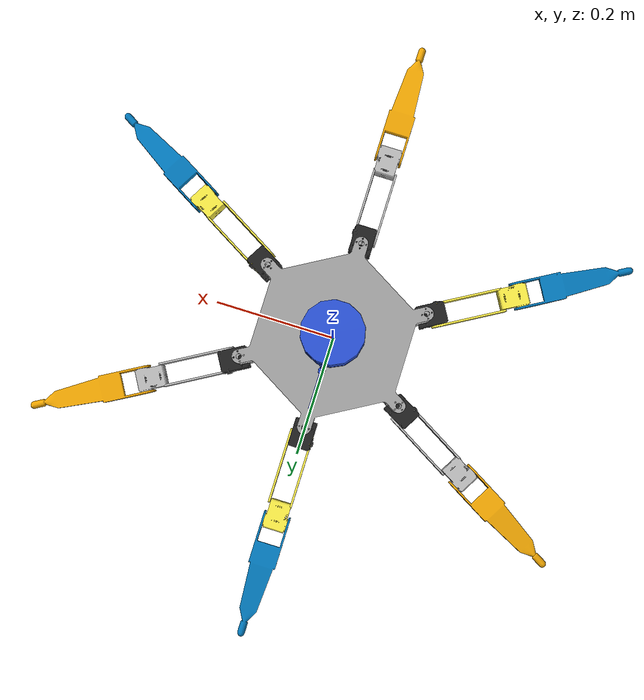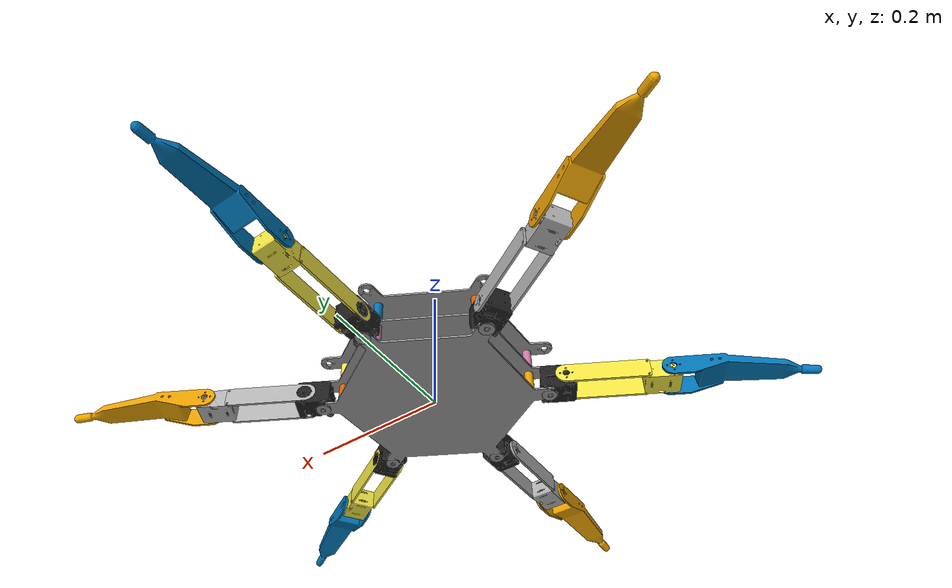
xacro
<?xml version="1.0"?>
<!-- Copyright (c) 2020 -->
<!-- Commonwealth Scientific and Industrial Research Organisation (CSIRO) -->
<!-- ABN 41 687 119 230 -->

<robot name="hexapod_model"
	xmlns:xacro="http://www.ros.org/wiki/xacro">

	<gazebo>
		<plugin name="gazebo_ros_control" filename="libgazebo_ros_control.so">
		</plugin>

		<plugin name="imu_plugin" filename="libgazebo_ros_imu.so">
			<alwaysOn>true</alwaysOn>
			<bodyName>bottom_plate</bodyName>
			<topicName>imu/data</topicName>
			<serviceName>imu_service</serviceName>
			<gaussianNoise>0.0</gaussianNoise>
			<updateRate>20.0</updateRate>
		</plugin>

	</gazebo>

	<gazebo reference="bottom_plate">
		<material>Gazebo/Grey</material>
		<selfCollide>True</selfCollide>
		<gravity>True</gravity>
	</gazebo>

	<gazebo reference="mid_plate">
		<material>Gazebo/Grey</material>
		<selfCollide>True</selfCollide>
		<gravity>True</gravity>
	</gazebo>

	<gazebo reference="top_plate">
		<material>Gazebo/Grey</material>
		<selfCollide>True</selfCollide>
		<gravity>True</gravity>
	</gazebo>

	<gazebo reference="puck">
		<material>Gazebo/BlueGlow</material>
		<selfCollide>True</selfCollide>
		<gravity>True</gravity>
	</gazebo>

	<xacro:include filename="$(find cavex_hexapod)/robot/macros.xacro" />

	<!-- model dimentions and parameters -->

	<xacro:property name="bodyPlateHeight" value="0.003" />
	<xacro:property name="bodyPlateRadius" value="0.152" />
	<xacro:property name="bodyPlateHexAngle" value="1.04719755" />
	<xacro:property name="bodyPlateOffset0" value="0.038" />
	<xacro:property name="bodyPlateOffset1" value="0.045" />
	<xacro:property name="bodyPlateMass" value="0.3" />

	<!-- base_motor link -->

	<xacro:property name="basemHeight" value="0.039" />
	<xacro:property name="basemRadius" value="0.01" />
	<xacro:property name="basemMass" value="0.05" />

	<xacro:property name="basem_yaw" value="0" />
	<xacro:property name="basem_pitch" value="0" />
	<xacro:property name="basem_roll" value="0" />

	<!-- coxa link -->

	<xacro:property name="coxaWidth" value="0.03611" />
	<xacro:property name="coxaLength" value="0.04645" />
	<xacro:property name="coxaHeight" value="0.036" />
	<xacro:property name="coxaMass" value="0.0982" />
	<xacro:property name="top2axelA" value="0.0103" />
	<xacro:property name="axelA2axelB" value="0.0235" />

	<xacro:property name="twoxl_yaw" value="1.5708" />

	<xacro:property name="coxa_yaw" value="0" />
	<xacro:property name="coxa_pitch" value="0" />
	<xacro:property name="coxa_roll" value="0" />

	<xacro:property name="coxaupperlimit" value="2.4" />
	<xacro:property name="coxaupperlimit" value="2.4" />
	<xacro:property name="coxalowerlimit" value="-2.4" />
	<xacro:property name="coxaeffortlimit" value="8.4" />
	<xacro:property name="coxavelocitylimit" value="2.35619449" />

	<!-- femur link -->

	<xacro:property name="femurWidth" value="0.04" />
	<xacro:property name="femurLength" value="0.11" />
	<xacro:property name="femurHeight" value="0.046" />
	<xacro:property name="femurMass" value="0.08" />

	<xacro:property name="femurplate_yaw" value="1.5708" />
	<xacro:property name="femurplate_roll" value="1.5708" />
	<xacro:property name="xl_yaw" value="-1.5708" />
	<xacro:property name="xlHeight" value="0.0465" />

	<xacro:property name="femur_yaw" value="0" />
	<xacro:property name="femur_pitch" value="0" />
	<xacro:property name="femur_roll" value="1.5708" />

	<xacro:property name="femurupperlimit" value="2.4" />
	<xacro:property name="femurlowerlimit" value="-2.4" />
	<xacro:property name="femureffortlimit" value="8.4" />
	<xacro:property name="femurvelocitylimit" value="2.35619449" />

	<!-- tibia link -->

	<xacro:property name="tibiaLength" value="0.186" />
	<xacro:property name="tibiaWidth" value="0.038" />
	<xacro:property name="tibiaRadius" value="0.015" />
	<xacro:property name="tibiaMass" value="0.04" />

	<xacro:property name="tibiaAssembly_roll" value="-1.5708" />
	<xacro:property name="tibiaAssembly_yaw" value="-1.5708" />
	<xacro:property name="axelC2bolt" value="0.025" />

	<xacro:property name="axelB2axelC" value="0.139" />
	<xacro:property name="tibia_yaw" value="0" />
	<xacro:property name="tibia_pitch" value="0" />
	<xacro:property name="tibia_roll" value="0" />

	<xacro:property name="tibiaupperlimit" value="2.4" />
	<xacro:property name="tibialowerlimit" value="-2.4" />
	<xacro:property name="tibiaeffortlimit" value="8.4" />
	<xacro:property name="tibiavelocitylimit" value="2.35619449" />

	<!-- spacers -->

	<xacro:property name="spacerMass" value="0.005" />
	<xacro:property name="spacerRadius" value="0.005" />
	<xacro:property name="spacerHeight" value="0.038" />

	<xacro:property name="spacer_roll" value="1.5708" />
	<xacro:property name="spacer_pitch" value="0" />
	<xacro:property name="spacer_yaw" value="0" />

	<!-- puck -->

	<xacro:property name="puckMass" value="0.83" />
	<xacro:property name="puckRadius" value="0.05165" />
	<xacro:property name="puckHeight" value="0.0717" />

	<!-- TODO: Set individual static friction values for links instead of default 0.2 -->
	<xacro:property name="defaultmu1" value="200" />
	<xacro:property name="defaultmu2" value="100" />
	<xacro:property name="defaultdamping" value="0.0" />
	<xacro:property name="defaultmu3" value="0.9" />

	<!-- Link description -->

	<link name="dummy_link" />
	<!-- Because kdl parser doesn't accept a root link with inertia -->

	<joint name="base_joint" type="fixed">
		<parent link="dummy_link"/>
		<child link="bottom_plate"/>
	</joint>

	<link name="bottom_plate">
		<visual>
			<geometry>
				<mesh filename="package://cavex_hexapod/meshes/base_noHole.stl" scale="0.001 0.001 0.001"/>
			</geometry>
			<origin xyz="0 0 ${bodyPlateHeight/2}" rpy="1.5708 0 ${bodyPlateHexAngle}"/>
		</visual>
		<collision>
			<geometry>
				<mesh filename="package://cavex_hexapod/meshes/base_noHole.stl" scale="0.001 0.001 0.001"/>
			</geometry>
			<origin xyz="0 0 ${bodyPlateHeight/2}" rpy="1.5708 0 ${bodyPlateHexAngle}"/>
		</collision>
		<inertial>
			<origin xyz="0 0 ${bodyPlateHeight/2}" rpy="1.5708 0 ${bodyPlateHexAngle}"/>
			<mass value="${bodyPlateMass}"/>
			<xacro:cylinder_inertia m="${bodyPlateMass}" r="${bodyPlateRadius}" h="${bodyPlateHeight}"/>
		</inertial>
	</link>

	<joint name="imag0_joint" type="fixed">
		<parent link="bottom_plate"/>
		<child link="mid_plate"/>
	</joint>

	<link name="mid_plate">
		<visual>
			<geometry>
				<mesh filename="package://cavex_hexapod/meshes/base_noHole.stl" scale="0.001 0.001 0.001"/>
			</geometry>
			<origin xyz="0 0 ${bodyPlateHeight/2+bodyPlateOffset0}" rpy="1.5708 0 ${bodyPlateHexAngle}"/>
		</visual>
		<collision>
			<geometry>
				<mesh filename="package://cavex_hexapod/meshes/base_noHole.stl" scale="0.001 0.001 0.001"/>
			</geometry>
			<origin xyz="0 0 ${bodyPlateHeight/2+bodyPlateOffset0}" rpy="1.5708 0 ${bodyPlateHexAngle}"/>
		</collision>
		<inertial>
			<origin xyz="0 0 ${bodyPlateHeight/2+bodyPlateOffset0}" rpy="1.5708 0 ${bodyPlateHexAngle}"/>
			<mass value="${bodyPlateMass}"/>
			<xacro:cylinder_inertia m="${bodyPlateMass}" r="${bodyPlateRadius}" h="${bodyPlateHeight}"/>
		</inertial>
	</link>

	<joint name="imag1_joint" type="fixed">
		<parent link="mid_plate"/>
		<child link="top_plate"/>
	</joint>

	<link name="top_plate">
		<visual>
			<geometry>
				<mesh filename="package://cavex_hexapod/meshes/base.stl" scale="0.001 0.001 0.001"/>
			</geometry>
			<origin xyz="0 0 ${bodyPlateHeight/2+bodyPlateOffset0+bodyPlateOffset1}" rpy="1.5708 0 ${bodyPlateHexAngle}"/>
		</visual>
		<collision>
			<geometry>
				<mesh filename="package://cavex_hexapod/meshes/base.stl" scale="0.001 0.001 0.001"/>
			</geometry>
			<origin xyz="0 0 ${bodyPlateHeight/2+bodyPlateOffset0+bodyPlateOffset1}" rpy="1.5708 0 ${bodyPlateHexAngle}"/>
		</collision>
		<inertial>
			<origin xyz="0 0 ${bodyPlateHeight/2+bodyPlateOffset0+bodyPlateOffset1}" rpy="1.5708 0 ${bodyPlateHexAngle}"/>
			<mass value="${bodyPlateMass}"/>
			<xacro:cylinder_inertia m="${bodyPlateMass}" r="${bodyPlateRadius}" h="${bodyPlateHeight}"/>
		</inertial>
	</link>

	<joint name="imag2_joint" type="fixed">
		<parent link="top_plate"/>
		<child link="puck"/>
		<origin xyz="0 0 ${bodyPlateHeight+bodyPlateOffset0+bodyPlateOffset1}" rpy="0 0 0"/>
	</joint>

	<link name="puck">
		<visual>
			<geometry>
				<mesh filename="package://cavex_hexapod/meshes/puck.stl" scale="0.01 0.01 0.01"/>
			</geometry>
			<origin xyz="0 0 0" rpy="1.5708 0 1.5708"/>
		</visual>
		<collision>
			<geometry>
				<mesh filename="package://cavex_hexapod/meshes/puck.stl" scale="0.01 0.01 0.01"/>
			</geometry>
			<origin xyz="0 0 0" rpy="1.5708 0 1.5708"/>
		</collision>
		<inertial>
			<origin xyz="0 0 0" rpy="1.5708 0 1.5708"/>
			<mass value="${puckMass}"/>
			<xacro:cylinder_inertia m="${puckMass}" r="${puckRadius}" h="${puckHeight}"/>
		</inertial>
	</link>

	<!--Instantiation of legs and spacers that sweep 60deg in CW order from 30deg off +ve x-axis -->

	<xacro:leg prefix="AR" index="0"/>
	<xacro:leg prefix="BR" index="1"/>
	<xacro:leg prefix="CR" index="2"/>
	<xacro:leg prefix="CL" index="3"/>
	<xacro:leg prefix="BL" index="4"/>
	<xacro:leg prefix="AL" index="5"/>

	<xacro:spacer0 prefix="A" index="0"/>
	<xacro:spacer0 prefix="B" index="1"/>
	<xacro:spacer0 prefix="C" index="2"/>
	<xacro:spacer0 prefix="D" index="3"/>
	<xacro:spacer0 prefix="E" index="4"/>
	<xacro:spacer0 prefix="F" index="5"/>

	<xacro:spacer1 prefix="A" index="0"/>
	<xacro:spacer1 prefix="B" index="1"/>
	<xacro:spacer1 prefix="C" index="2"/>
	<xacro:spacer1 prefix="D" index="3"/>
	<xacro:spacer1 prefix="E" index="4"/>
	<xacro:spacer1 prefix="F" index="5"/>

</robot>

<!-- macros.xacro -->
<!-- Copyright (c) 2020 -->
<!-- Commonwealth Scientific and Industrial Research Organisation (CSIRO) -->
<!-- ABN 41 687 119 230 -->

<robot name="hexapod_boxmodel"
    xmlns:xacro="http://www.ros.org/wiki/xacro">

    <xacro:macro name="cylinder_inertia" params="m r h">
        <inertia ixx="${m*(3*r*r+h*h)/12}" ixy = "0" ixz = "0" iyy="${m*(3*r*r+h*h)/12}" iyz = "0" izz="${m*r*r/2}" />
    </xacro:macro>

    <xacro:macro name="box_inertia" params="m x y z">
        <inertia ixx="${m*(y*y+z*z)/12}" ixy = "0" ixz = "0" iyy="${m*(x*x+z*z)/12}" iyz = "0" izz="${m*(x*x+z*z)/12}" />
    </xacro:macro>

    <xacro:macro name="sphere_inertia" params="m r">
        <inertia ixx="${2*m*r*r/5}" ixy = "0" ixz = "0" iyy="${2*m*r*r/5}" iyz = "0" izz="${2*m*r*r/5}" />
    </xacro:macro>

    <material name="black">
        <color rgba= "0 0 0 1"/>
    </material>

    <material name="grey">
        <color rgba= "0.2 0.2 0.2 1"/>
    </material>

    <!-- LEGS -->

    <xacro:macro name="leg" params="prefix index">

        <!-- base_motor link (Base motor visual component is attached to the main body)-->

        <link name="${prefix}_basem_link">
            <visual>
                <geometry>
                    <cylinder length="${basemHeight}" radius="${basemRadius}"/>
                </geometry>
                <origin xyz="0 0 0" rpy="0 0 0"/>
            </visual>
            <collision>
                <geometry>
                    <cylinder length="${basemHeight}" radius="${basemRadius}"/>
                </geometry>
                <origin xyz="0 0 0" rpy="0 0 0"/>
            </collision>
            <inertial>
                <mass value="${basemMass}"/>
                <xacro:cylinder_inertia m="${basemMass}" r="${basemRadius}" h="${basemHeight}"/>
            </inertial>
        </link>

        <joint name="${prefix}_basem_joint" type="fixed">
            <parent link="bottom_plate"/>
            <child link="${prefix}_basem_link"/>
            <origin xyz = "${bodyPlateRadius*cos(bodyPlateHexAngle/2+index*bodyPlateHexAngle)} ${bodyPlateRadius*sin(bodyPlateHexAngle/2+index*bodyPlateHexAngle)} ${bodyPlateOffset0/2}" rpy = "${basem_roll} ${basem_pitch} ${bodyPlateHexAngle/2+index*bodyPlateHexAngle+basem_yaw}"/>
        </joint>

        <!-- coxa link -->

        <link name="${prefix}_coxa_link">
            <visual>
                <geometry>
                    <mesh filename="package://cavex_hexapod/meshes/2XL-430.stl" scale="0.01 0.01 0.01"/>
                </geometry>
                <origin xyz="${coxaLength/2-top2axelA} 0 0" rpy="0 0 ${twoxl_yaw}"/>
            </visual>
            <collision>
                <geometry>
                    <mesh filename="package://cavex_hexapod/meshes/2XL-430.stl" scale="0.01 0.01 0.01"/>
                </geometry>
                <origin xyz="${coxaLength/2-top2axelA} 0 0" rpy="0 0 ${twoxl_yaw}"/>
            </collision>
            <inertial>
                <mass value="${coxaMass}"/>
                <xacro:box_inertia m="${coxaMass}" x="${coxaLength}" y="${coxaWidth}" z="${coxaHeight}"/>
                <origin xyz="${coxaLength/2-top2axelA} 0 0" rpy="0 0 0"/>
            </inertial>
        </link>

        <joint name="${prefix}_coxa_joint" type="revolute">
            <limit upper="${coxaupperlimit}" lower="${coxalowerlimit}" velocity="${coxavelocitylimit}" effort="${coxaeffortlimit}"/>
            <axis xyz="0 0 1"/>
            <dynamics damping="${defaultdamping}" friction="${defaultmu3}"/>
            <parent link="${prefix}_basem_link"/>
            <child link="${prefix}_coxa_link"/>
            <origin xyz = "0 0 0" rpy = "${coxa_roll} ${coxa_pitch} ${coxa_yaw}"/>
        </joint>

        <transmission name="${prefix}_coxa_tran">
            <type>transmission_interface/SimpleTransmission</type>
            <joint name="${prefix}_coxa_joint">
                <hardwareInterface>hardware_interface/EffortJointInterface</hardwareInterface>
            </joint>
            <actuator name="${prefix}_coxa_motor">
                <hardwareInterface>hardware_interface/EffortJointInterface</hardwareInterface>
                <mechanicalReduction>1</mechanicalReduction>
            </actuator>
        </transmission>

        <!-- femur link -->

        <link name="${prefix}_femur_link">
            <visual name="femurPlate0">
                <geometry>
                    <mesh filename="package://cavex_hexapod/meshes/topLegConnection.stl" scale="0.001 0.001 0.001"/>
                </geometry>
                <origin xyz="0 0 ${coxaWidth/2}" rpy="${femurplate_roll} 0 ${femurplate_yaw}"/>
            </visual>
            <visual name="femurPlate1">
                <geometry>
                    <mesh filename="package://cavex_hexapod/meshes/topLegConnection.stl" scale="0.001 0.001 0.001"/>
                </geometry>
                <origin xyz="0 0 -${coxaWidth/2}" rpy="${femurplate_roll} 0 ${femurplate_yaw}"/>
            </visual>
            <visual name="XL">
                <geometry>
                    <mesh filename="package://cavex_hexapod/meshes/XC-430.stl" scale="0.01 0.01 0.01"/>
                </geometry>
                <origin xyz="${axelB2axelC} 0 0" rpy="0 0 ${xl_yaw}"/>
            </visual>
            <collision>
                <geometry>
                    <box size="${femurLength} ${femurHeight} ${femurWidth}"/>
                </geometry>
                <origin xyz="${femurLength/2} 0 0" rpy="0 0 0"/>
            </collision>
            <inertial>
                <mass value="${femurMass}"/>
                <xacro:box_inertia m="${femurMass}" x="${femurLength+xlHeight}" y="${femurHeight}" z="${femurWidth}"/>
                <origin xyz="${(femurLength+xlHeight)/2} 0 0" rpy="0 0 0"/>
            </inertial>
        </link>

        <joint name="${prefix}_femur_joint" type="revolute">
            <limit upper="${femurupperlimit}" lower="${femurlowerlimit}" velocity="${femurvelocitylimit}" effort="${femureffortlimit}"/>
            <axis xyz="0 0 1"/>
            <dynamics damping="${defaultdamping}" friction="${defaultmu3}"/>
            <parent link="${prefix}_coxa_link"/>
            <child link="${prefix}_femur_link"/>
            <origin xyz = "${axelA2axelB} 0 0" rpy = "${femur_roll} ${femur_pitch} ${femur_yaw}"/>
        </joint>

        <transmission name="${prefix}_femur_tran">
            <type>transmission_interface/SimpleTransmission</type>
            <joint name="${prefix}_femur_joint">
                <hardwareInterface>hardware_interface/EffortJointInterface</hardwareInterface>
            </joint>
            <actuator name="${prefix}_femur_motor">
                <hardwareInterface>hardware_interface/EffortJointInterface</hardwareInterface>
                <mechanicalReduction>1</mechanicalReduction>
            </actuator>
        </transmission>

        <!-- tibia link -->

        <link name="${prefix}_tibia_link">
            <visual>
                <geometry>
                    <mesh filename="package://cavex_hexapod/meshes/tibia.stl" scale="0.01 0.01 0.01"/>
                </geometry>
                <origin xyz="0 0 0" rpy="${tibiaAssembly_roll} 0 ${tibiaAssembly_yaw}"/>
            </visual>
            <collision>
                <geometry>
                    <mesh filename="package://cavex_hexapod/meshes/tibia.stl" scale="0.01 0.01 0.01"/>
                </geometry>
                <origin xyz="0 0 0" rpy="${tibiaAssembly_roll} 0 ${tibiaAssembly_yaw}"/>
            </collision>
            <inertial>
                <mass value="${tibiaMass}"/>
                <xacro:cylinder_inertia m="${tibiaMass}" h="${tibiaLength}" r="${tibiaRadius}"/>
                <origin xyz="${tibiaLength/2} 0 0" rpy="0 1.5708 0"/>
            </inertial>
        </link>

        <joint name="${prefix}_tibia_joint" type="revolute">
            <limit upper="${tibiaupperlimit}" lower="${tibialowerlimit}" velocity="${tibiavelocitylimit}" effort="${tibiaeffortlimit}"/>
            <axis xyz="0 0 1"/>
            <dynamics damping="${defaultdamping}" friction="${defaultmu3}"/>
            <parent link="${prefix}_femur_link"/>
            <child link="${prefix}_tibia_link"/>
            <origin xyz = "${axelB2axelC} 0 0" rpy = "${tibia_roll} ${tibia_pitch} ${tibia_yaw}"/>
        </joint>

        <transmission name="${prefix}_tibia_tran">
            <type>transmission_interface/SimpleTransmission</type>
            <joint name="${prefix}_tibia_joint">
                <hardwareInterface>hardware_interface/EffortJointInterface</hardwareInterface>
            </joint>
            <actuator name="${prefix}_tibia_motor">
                <hardwareInterface>hardware_interface/EffortJointInterface</hardwareInterface>
                <mechanicalReduction>1</mechanicalReduction>
            </actuator>
        </transmission>

        <!--Gazebo specific tags  -->

        <!-- mu1, mu2 - Friction coefficients μ for the principal contact directions along the contact surface as defined by the Open Dynamics Engine (ODE) -->
        <!-- kp, kd - Contact stiffness k_p and damping k_d for rigid body contacts as defined by ODE -->
        <!-- material - Material of visual element -->
        <!--selfCollide - If true, the link can collide with other links in the model. -->
        <!-- minDepth - minimum allowable depth before contact correction impulse is applied -->

        <gazebo reference="${prefix}_basem_link">
            <mu1>${defaultmu1}</mu1>
            <mu2>${defaultmu2}</mu2>
            <material>Gazebo/Grey</material>
            <gravity>True</gravity>
        </gazebo>

        <gazebo reference="${prefix}_coxa_link">
            <mu1>${defaultmu1}</mu1>
            <mu2>${defaultmu2}</mu2>
            <kp>1000000.0</kp>
            <kd>400000000.0</kd>
            <material>Gazebo/Black</material>
            <gravity>True</gravity>
        </gazebo>

        <gazebo reference="${prefix}_femur_link">
            <mu1>${defaultmu1}</mu1>
            <mu2>${defaultmu2}</mu2>
            <kp>1000000000.0</kp>
            <kd>400000000.0</kd>
            <gravity>True</gravity>
        </gazebo>

        <gazebo reference="${prefix}_tibia_link">
            <mu1>${defaultmu1}</mu1>
            <mu2>${defaultmu1}</mu2>
            <minDepth>0.005</minDepth>
            <kp>100000000000.0</kp>
            <kd>400000000.0</kd>
            <gravity>True</gravity>
        </gazebo>

    <!-- SPACERS -->

    </xacro:macro>

    	<xacro:macro name="spacer0" params="prefix index">

		<link name="${prefix}_spacer0_link">
			<visual>
				<geometry>
					<mesh filename="package://cavex_hexapod/meshes/spacer.stl" scale="0.001 0.001 0.001"/>
				</geometry>
				<origin xyz="0 0 0" rpy="0 0 0"/>
			</visual>
			<collision>
				<geometry>
					<mesh filename="package://cavex_hexapod/meshes/spacer.stl" scale="0.001 0.001 0.001"/>
				</geometry>
				<origin xyz="0 0 0" rpy="0 0 0"/>
			</collision>
			<inertial>
				<origin xyz="0 0 0" rpy="0 0 0"/>
				<mass value="${spacerMass}"/>
				<xacro:cylinder_inertia m="${spacerMass}" r="${spacerRadius}" h="${spacerHeight}"/>
			</inertial>
		</link>

		<joint name="${prefix}_spacer0_joint" type="fixed">
			<parent link="mid_plate"/>
			<child link="${prefix}_spacer0_link"/>
			<origin xyz = "${(bodyPlateRadius-0.025)*cos(bodyPlateHexAngle/2+index*bodyPlateHexAngle)} ${(bodyPlateRadius-0.025)*sin(bodyPlateHexAngle/2+index*bodyPlateHexAngle)} ${bodyPlateHeight}" rpy = "${spacer_roll} ${spacer_pitch} ${spacer_yaw}"/>
		</joint>

	</xacro:macro>

		<xacro:macro name="spacer1" params="prefix index">

		<link name="${prefix}_spacer1_link">
			<visual>
				<geometry>
					<mesh filename="package://cavex_hexapod/meshes/spacer.stl" scale="0.001 0.001 0.001"/>
				</geometry>
				<origin xyz="0 0 0" rpy="0 0 0"/>
			</visual>
			<collision>
				<geometry>
					<mesh filename="package://cavex_hexapod/meshes/spacer.stl" scale="0.001 0.001 0.001"/>
				</geometry>
				<origin xyz="0 0 0" rpy="0 0 0"/>
			</collision>
			<inertial>
				<origin xyz="0 0 0" rpy="0 0 0"/>
				<mass value="${spacerMass}"/>
				<xacro:cylinder_inertia m="${spacerMass}" r="${spacerRadius}" h="${spacerHeight}"/>
			</inertial>
		</link>

		<joint name="${prefix}_spacer1_joint" type="fixed">
			<parent link="mid_plate"/>
			<child link="${prefix}_spacer1_link"/>
			<origin xyz = "${(bodyPlateRadius-0.025)*cos(bodyPlateHexAngle/2+index*bodyPlateHexAngle)} ${(bodyPlateRadius-0.025)*sin(bodyPlateHexAngle/2+index*bodyPlateHexAngle)} ${bodyPlateHeight+bodyPlateOffset0}" rpy = "${spacer_roll} ${spacer_pitch} ${spacer_yaw}"/>
		</joint>

	</xacro:macro>

</robot>
